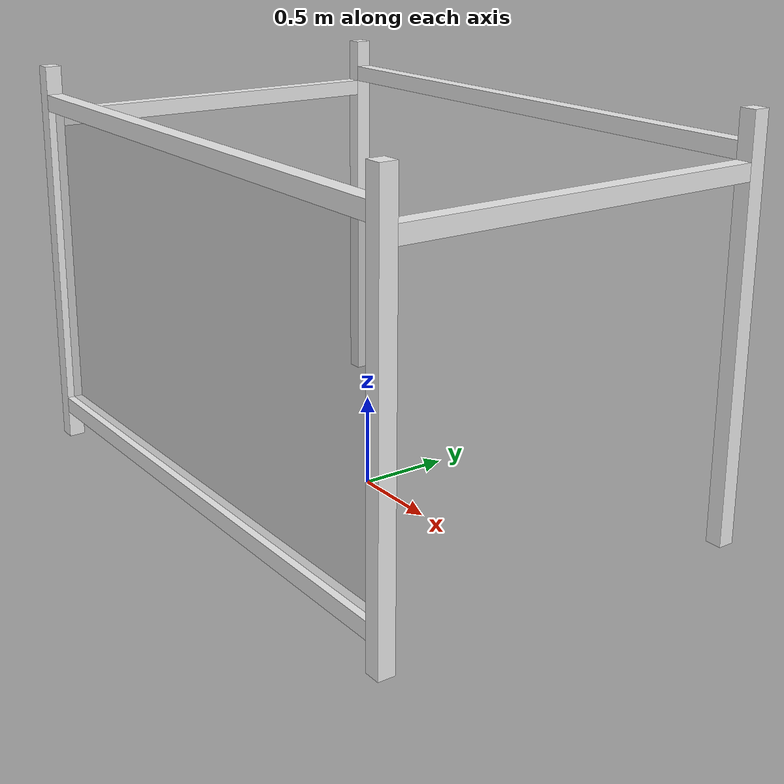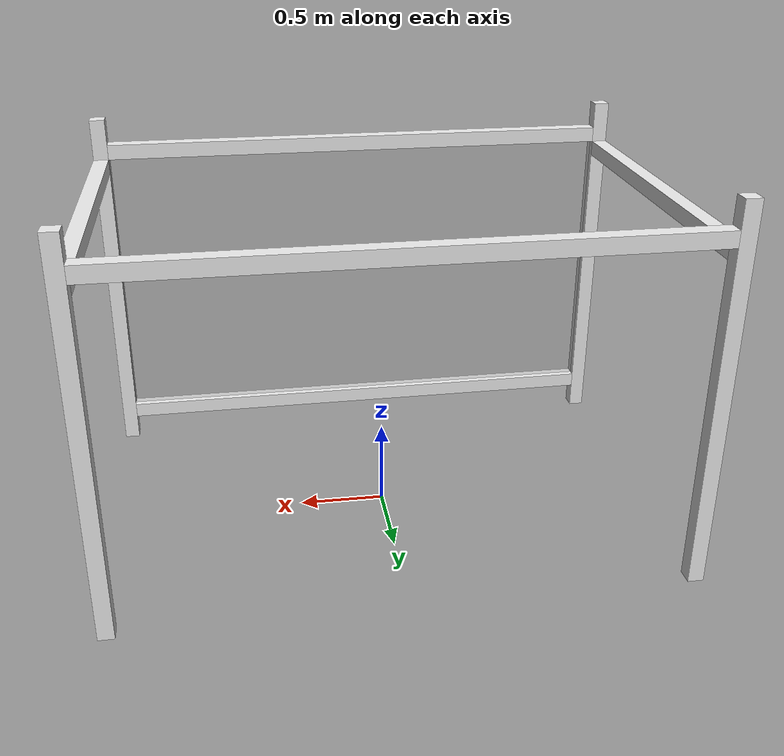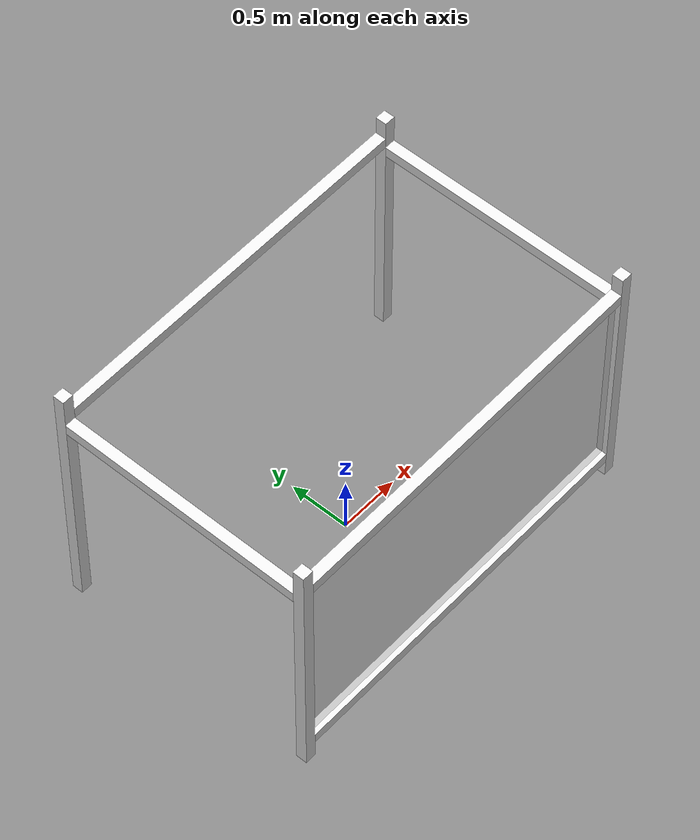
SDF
<?xml version="1.0" ?>
<sdf version="1.4">
  <model name="grips_cage">
    <static>true</static>
    <link name="link">

      <collision name="surface">
        <pose>0 -1.045 1.1 0 0 0</pose>
        <geometry>
          <box>
            <size>3.1 0.008 1.71</size>
          </box>
        </geometry>
      </collision>
      <visual name="surface">
        <pose>0 -1.045 1.1 0 0 0</pose>
        <geometry>
          <box>
            <size>3.1 0.008 1.71</size>
          </box>
        </geometry>
        <transparency>0.75</transparency>
        <material>
          <script>
            <uri>file://media/materials/scripts/gazebo.material</uri>
            <name>Gazebo/Grey</name>
          </script>
        </material>
      </visual>

      <!-- Legs -->
      <collision name="front_r_leg">
        <pose>1.595 1.045 1.1 0 0 0</pose>
        <geometry>
          <box>
            <size>0.09 0.09 2.2</size>
          </box>
        </geometry>
      </collision>
      <visual name="front_r_leg">
        <pose>1.595 1.045 1.1 0 0 0</pose>
        <geometry>
          <box>
            <size>0.09 0.09 2.2</size>
          </box>
        </geometry>
        <material>
          <script>
            <uri>file://media/materials/scripts/gazebo.material</uri>
            <name>Gazebo/White</name>
          </script>
        </material>
      </visual>

      <collision name="front_l_leg">
        <pose>-1.595 1.045 1.1 0 0 0</pose>
        <geometry>
          <box>
            <size>0.09 0.09 2.2</size>
          </box>
        </geometry>
      </collision>
      <visual name="front_l_leg">
        <pose>-1.595 1.045 1.1 0 0 0</pose>
        <geometry>
          <box>
            <size>0.09 0.09 2.2</size>
          </box>
        </geometry>
        <material>
          <script>
            <uri>file://media/materials/scripts/gazebo.material</uri>
            <name>Gazebo/White</name>
          </script>
        </material>
      </visual>

      <collision name="back_r_leg">
        <pose>1.595 -1.045 1.1 0 0 0</pose>
        <geometry>
          <box>
            <size>0.09 0.09 2.2</size>
          </box>
        </geometry>
      </collision>
      <visual name="back_r_leg">
        <pose>1.595 -1.045 1.1 0 0 0</pose>
        <geometry>
          <box>
            <size>0.09 0.09 2.2</size>
          </box>
        </geometry>
        <material>
          <script>
            <uri>file://media/materials/scripts/gazebo.material</uri>
            <name>Gazebo/White</name>
          </script>
        </material>
      </visual>

      <collision name="back_l_leg">
        <pose>-1.595 -1.045 1.1 0 0 0</pose>
        <geometry>
          <box>
            <size>0.09 0.09 2.2</size>
          </box>
        </geometry>
      </collision>
      <visual name="back_l_leg">
        <pose>-1.595 -1.045 1.1 0 0 0</pose>
        <geometry>
          <box>
            <size>0.09 0.09 2.2</size>
          </box>
        </geometry>
        <material>
          <script>
            <uri>file://media/materials/scripts/gazebo.material</uri>
            <name>Gazebo/White</name>
          </script>
        </material>
      </visual>

      <!-- Arms -->
      <collision name="front_arm">
        <pose>0 1.045 2 0 0 0</pose>
        <geometry>
          <box>
            <size>3.1 0.09 0.09</size>
          </box>
        </geometry>
      </collision>
      <visual name="front_arm">
        <pose>0 1.045 2 0 0 0</pose>
        <geometry>
          <box>
            <size>3.1 0.09 0.09</size>
          </box>
        </geometry>
        <material>
          <script>
            <uri>file://media/materials/scripts/gazebo.material</uri>
            <name>Gazebo/White</name>
          </script>
        </material>
      </visual>

      <collision name="back_top_arm">
        <pose>0 -1.045 2 0 0 0</pose>
        <geometry>
          <box>
            <size>3.1 0.09 0.09</size>
          </box>
        </geometry>
      </collision>
      <visual name="back_top_arm">
        <pose>0 -1.045 2 0 0 0</pose>
        <geometry>
          <box>
            <size>3.1 0.09 0.09</size>
          </box>
        </geometry>
        <material>
          <script>
            <uri>file://media/materials/scripts/gazebo.material</uri>
            <name>Gazebo/White</name>
          </script>
        </material>
      </visual>

      <collision name="back_bottom_arm">
        <pose>0 -1.045 0.2 0 0 0</pose>
        <geometry>
          <box>
            <size>3.1 0.09 0.09</size>
          </box>
        </geometry>
      </collision>
      <visual name="back_bottom_arm">
        <pose>0 -1.045 0.2 0 0 0</pose>
        <geometry>
          <box>
            <size>3.1 0.09 0.09</size>
          </box>
        </geometry>
        <material>
          <script>
            <uri>file://media/materials/scripts/gazebo.material</uri>
            <name>Gazebo/White</name>
          </script>
        </material>
      </visual>

      <collision name="left_arm">
        <pose>-1.595 0 1.91 0 0 0</pose>
        <geometry>
          <box>
            <size>0.09 2 0.09</size>
          </box>
        </geometry>
      </collision>
      <visual name="left_arm">
        <pose>-1.595 0 1.91 0 0 0</pose>
        <geometry>
          <box>
            <size>0.09 2 0.09</size>
          </box>
        </geometry>
        <material>
          <script>
            <uri>file://media/materials/scripts/gazebo.material</uri>
            <name>Gazebo/White</name>
          </script>
        </material>
      </visual>

      <collision name="right_arm">
        <pose>1.595 0 1.91 0 0 0</pose>
        <geometry>
          <box>
            <size>0.09 2 0.09</size>
          </box>
        </geometry>
      </collision>
      <visual name="right_arm">
        <pose>1.595 0 1.91 0 0 0</pose>
        <geometry>
          <box>
            <size>0.09 2 0.09</size>
          </box>
        </geometry>
        <material>
          <script>
            <uri>file://media/materials/scripts/gazebo.material</uri>
            <name>Gazebo/White</name>
          </script>
        </material>
      </visual>

    </link>
  </model>
</sdf>
